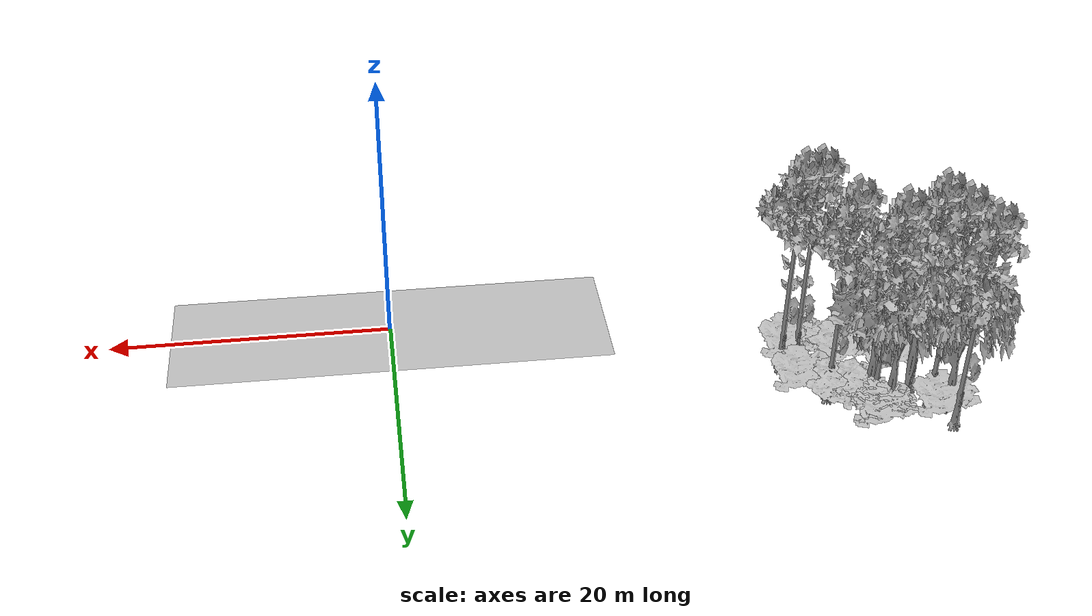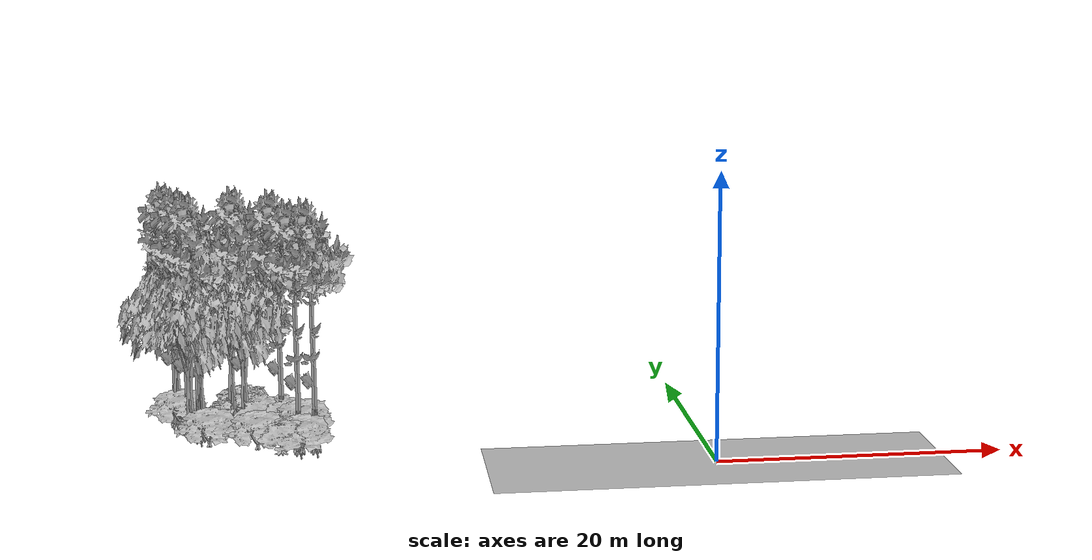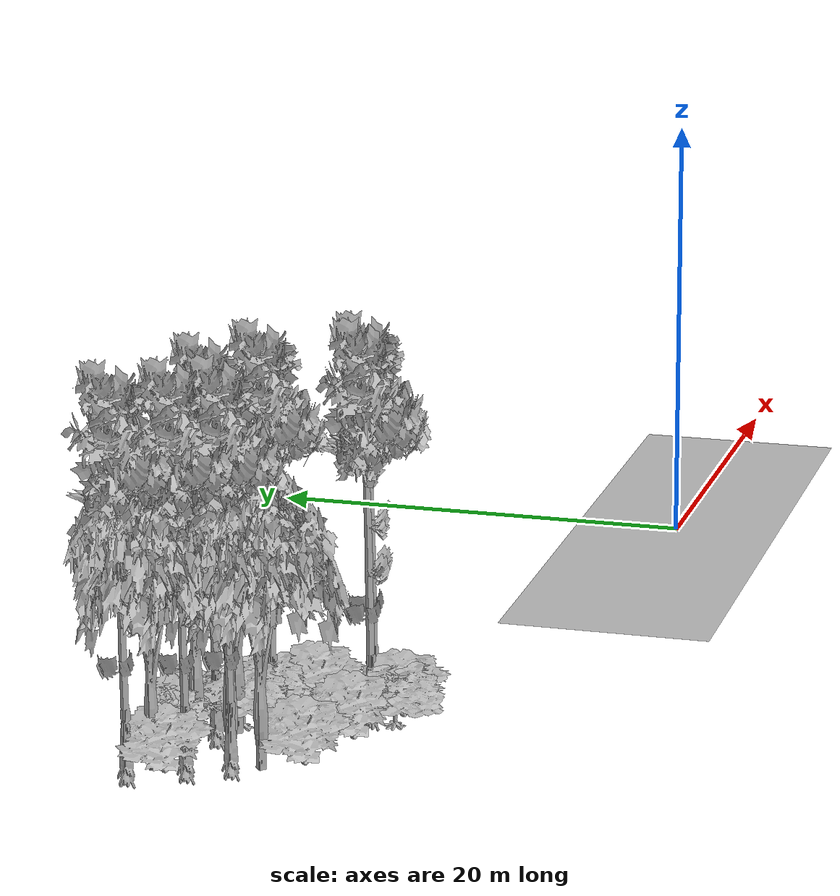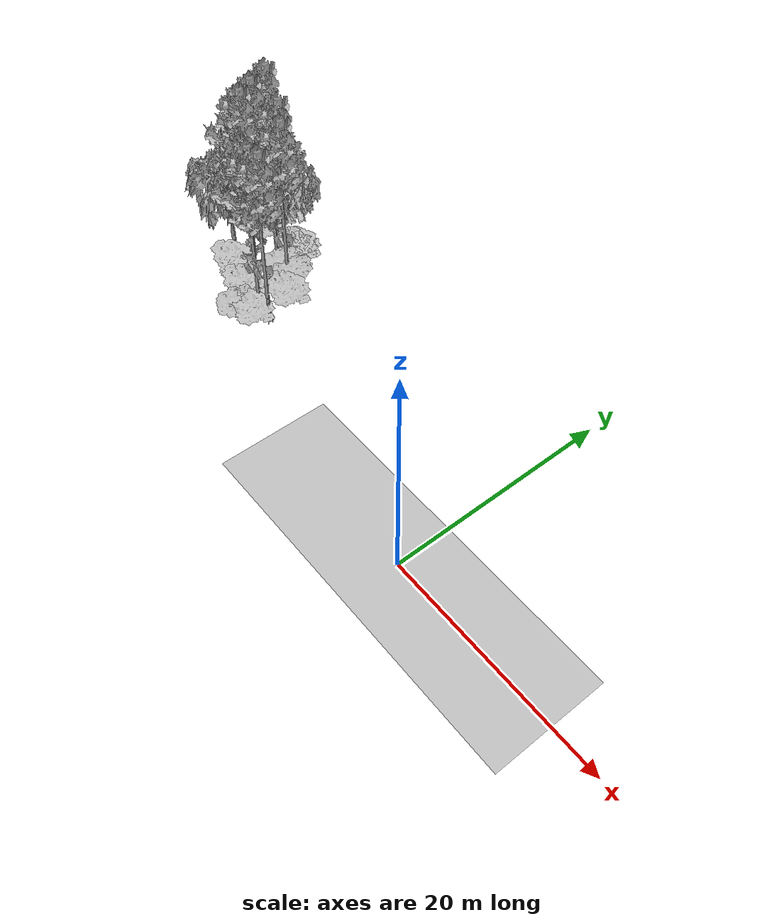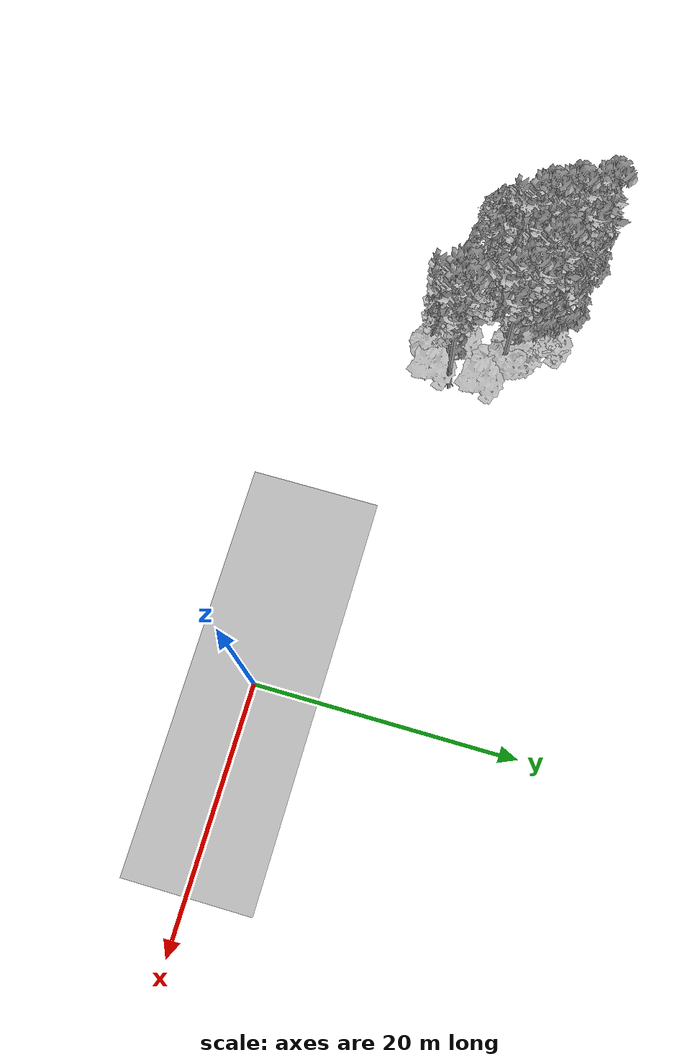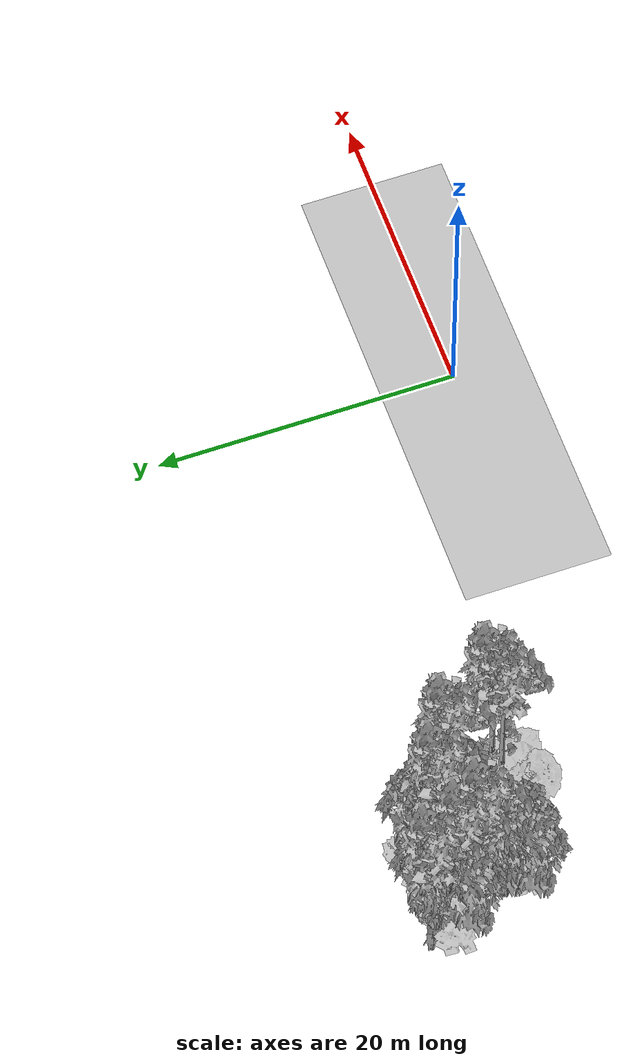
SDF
<sdf version="1.7">
 <world name="default">
  <model name="ground_plane">
   <static>1</static>
   <link name="link">
    <collision name="collision">
     <pose>-50 0 0 0 -0 0</pose>
     <geometry><plane><normal>0 0 1</normal><size>100 100</size></plane></geometry>
     <surface><contact><ode><min_depth>0.01</min_depth><max_vel>0</max_vel></ode></contact></surface>
    </collision>
    <visual name="grass">
     <cast_shadows>0</cast_shadows>
     <geometry>
      <mesh>
       <scale>0.5814285714285714 0.18142857142857144 0.1</scale>
       <uri>file://grass_plane/meshes/grass_plane.dae</uri>
      </mesh>
     </geometry>
    </visual>
   </link>
  </model>
  <model name="Tree 10">
   <static>1</static>
   <pose>-36.72252852309552 13.407077684974691 0 1.57079 -0 0</pose>
   <link name="link">
    <collision name="collision">
     <geometry><mesh><scale>3 2 3</scale><uri>model://tree_3/meshes/tree_3.obj</uri></mesh></geometry>
    </collision>
    <visual name="visual">
     <geometry><mesh><scale>3 2 3</scale><uri>model://tree_3/meshes/tree_3.obj</uri></mesh></geometry>
    </visual>
   </link>
  </model>
  <model name="Tree 19">
   <static>1</static>
   <pose>-36.90230717961292 13.916196201880688 0 1.57079 -0 0</pose>
   <link name="link">
    <collision name="collision">
     <geometry><mesh><scale>3.5 5 3.5</scale><uri>model://tree_2/meshes/tree_2.obj</uri></mesh></geometry>
    </collision>
    <visual name="visual">
     <geometry><mesh><scale>3.5 5 3.5</scale><uri>model://tree_2/meshes/tree_2.obj</uri></mesh></geometry>
    </visual>
   </link>
  </model>
  <model name="Tree 67">
   <static>1</static>
   <pose>-32.2931211116159 13.700185355622121 0 1.57079 -0 0</pose>
   <link name="link">
    <collision name="collision">
     <geometry><mesh><scale>3 2 3</scale><uri>model://tree_3/meshes/tree_3.obj</uri></mesh></geometry>
    </collision>
    <visual name="visual">
     <geometry><mesh><scale>3 2 3</scale><uri>model://tree_3/meshes/tree_3.obj</uri></mesh></geometry>
    </visual>
   </link>
  </model>
  <model name="Tree 78">
   <static>1</static>
   <pose>-29.409249671771317 11.15461628394938 0 1.57079 -0 0</pose>
   <link name="link">
    <collision name="collision">
     <geometry><mesh><scale>3.5 5 3.5</scale><uri>model://tree_9/meshes/tree_9.obj</uri></mesh></geometry>
    </collision>
    <visual name="visual">
     <geometry><mesh><scale>3.5 5 3.5</scale><uri>model://tree_9/meshes/tree_9.obj</uri></mesh></geometry>
    </visual>
   </link>
  </model>
  <model name="Tree 102">
   <static>1</static>
   <pose>-28.18875982257997 7.178274187207801 0 1.57079 -0 0</pose>
   <link name="link">
    <collision name="collision">
     <geometry><mesh><scale>3.5 5 3.5</scale><uri>model://tree_9/meshes/tree_9.obj</uri></mesh></geometry>
    </collision>
    <visual name="visual">
     <geometry><mesh><scale>3.5 5 3.5</scale><uri>model://tree_9/meshes/tree_9.obj</uri></mesh></geometry>
    </visual>
   </link>
  </model>
  <model name="Tree 129">
   <static>1</static>
   <pose>-29.409409268300898 5.760476917625915 0 1.57079 -0 0</pose>
   <link name="link">
    <collision name="collision">
     <geometry><mesh><scale>4 2.5 4</scale><uri>model://tree_1/meshes/tree_1.obj</uri></mesh></geometry>
    </collision>
    <visual name="visual">
     <geometry><mesh><scale>4 2.5 4</scale><uri>model://tree_1/meshes/tree_1.obj</uri></mesh></geometry>
    </visual>
   </link>
  </model>
  <model name="Tree 201">
   <static>1</static>
   <pose>-31.054858728453603 7.046896896750166 0 1.57079 -0 0</pose>
   <link name="link">
    <collision name="collision">
     <geometry><mesh><scale>3 2 3</scale><uri>model://tree_3/meshes/tree_3.obj</uri></mesh></geometry>
    </collision>
    <visual name="visual">
     <geometry><mesh><scale>3 2 3</scale><uri>model://tree_3/meshes/tree_3.obj</uri></mesh></geometry>
    </visual>
   </link>
  </model>
  <model name="Tree 207">
   <static>1</static>
   <pose>-27.05451510245605 7.39091677508301 0 1.57079 -0 0</pose>
   <link name="link">
    <collision name="collision">
     <geometry><mesh><scale>3.5 5 3.5</scale><uri>model://tree_9/meshes/tree_9.obj</uri></mesh></geometry>
    </collision>
    <visual name="visual">
     <geometry><mesh><scale>3.5 5 3.5</scale><uri>model://tree_9/meshes/tree_9.obj</uri></mesh></geometry>
    </visual>
   </link>
  </model>
  <model name="Tree 217">
   <static>1</static>
   <pose>-27.975430353632866 5.760126110936511 0 1.57079 -0 0</pose>
   <link name="link">
    <collision name="collision">
     <geometry><mesh><scale>3 2 3</scale><uri>model://tree_3/meshes/tree_3.obj</uri></mesh></geometry>
    </collision>
    <visual name="visual">
     <geometry><mesh><scale>3 2 3</scale><uri>model://tree_3/meshes/tree_3.obj</uri></mesh></geometry>
    </visual>
   </link>
  </model>
  <model name="Tree 247">
   <static>1</static>
   <pose>-27.895539666698607 9.579811099908248 0 1.57079 -0 0</pose>
   <link name="link">
    <collision name="collision">
     <geometry><mesh><scale>3 2 3</scale><uri>model://tree_3/meshes/tree_3.obj</uri></mesh></geometry>
    </collision>
    <visual name="visual">
     <geometry><mesh><scale>3 2 3</scale><uri>model://tree_3/meshes/tree_3.obj</uri></mesh></geometry>
    </visual>
   </link>
  </model>
  <model name="Tree 262">
   <static>1</static>
   <pose>-33.00785488985469 13.336079853074175 0 1.57079 -0 0</pose>
   <link name="link">
    <collision name="collision">
     <geometry><mesh><scale>3.5 5 3.5</scale><uri>model://tree_2/meshes/tree_2.obj</uri></mesh></geometry>
    </collision>
    <visual name="visual">
     <geometry><mesh><scale>3.5 5 3.5</scale><uri>model://tree_2/meshes/tree_2.obj</uri></mesh></geometry>
    </visual>
   </link>
  </model>
  <model name="Tree 280">
   <static>1</static>
   <pose>-35.77631226535189 9.604264641210882 0 1.57079 -0 0</pose>
   <link name="link">
    <collision name="collision">
     <geometry><mesh><scale>3.5 5 3.5</scale><uri>model://tree_2/meshes/tree_2.obj</uri></mesh></geometry>
    </collision>
    <visual name="visual">
     <geometry><mesh><scale>3.5 5 3.5</scale><uri>model://tree_2/meshes/tree_2.obj</uri></mesh></geometry>
    </visual>
   </link>
  </model>
  <model name="Tree 298">
   <static>1</static>
   <pose>-32.07065079413241 12.781775955591456 0 1.57079 -0 0</pose>
   <link name="link">
    <collision name="collision">
     <geometry><mesh><scale>3.5 5 3.5</scale><uri>model://tree_9/meshes/tree_9.obj</uri></mesh></geometry>
    </collision>
    <visual name="visual">
     <geometry><mesh><scale>3.5 5 3.5</scale><uri>model://tree_9/meshes/tree_9.obj</uri></mesh></geometry>
    </visual>
   </link>
  </model>
  <model name="Tree 303">
   <static>1</static>
   <pose>-29.681218682416272 11.546037307487307 0 1.57079 -0 0</pose>
   <link name="link">
    <collision name="collision">
     <geometry><mesh><scale>4 2.5 4</scale><uri>model://tree_1/meshes/tree_1.obj</uri></mesh></geometry>
    </collision>
    <visual name="visual">
     <geometry><mesh><scale>4 2.5 4</scale><uri>model://tree_1/meshes/tree_1.obj</uri></mesh></geometry>
    </visual>
   </link>
  </model>
  <model name="Tree 313">
   <static>1</static>
   <pose>-31.22987261105364 11.886431160235688 0 1.57079 -0 0</pose>
   <link name="link">
    <collision name="collision">
     <geometry><mesh><scale>4 2.5 4</scale><uri>model://tree_1/meshes/tree_1.obj</uri></mesh></geometry>
    </collision>
    <visual name="visual">
     <geometry><mesh><scale>4 2.5 4</scale><uri>model://tree_1/meshes/tree_1.obj</uri></mesh></geometry>
    </visual>
   </link>
  </model>
  <model name="Tree 326">
   <static>1</static>
   <pose>-35.103596019952946 11.146379649859139 0 1.57079 -0 0</pose>
   <link name="link">
    <collision name="collision">
     <geometry><mesh><scale>3.5 5 3.5</scale><uri>model://tree_2/meshes/tree_2.obj</uri></mesh></geometry>
    </collision>
    <visual name="visual">
     <geometry><mesh><scale>3.5 5 3.5</scale><uri>model://tree_2/meshes/tree_2.obj</uri></mesh></geometry>
    </visual>
   </link>
  </model>
  <model name="Tree 339">
   <static>1</static>
   <pose>-37.08245660067368 14.969418336603653 0 1.57079 -0 0</pose>
   <link name="link">
    <collision name="collision">
     <geometry><mesh><scale>3.5 5 3.5</scale><uri>model://tree_9/meshes/tree_9.obj</uri></mesh></geometry>
    </collision>
    <visual name="visual">
     <geometry><mesh><scale>3.5 5 3.5</scale><uri>model://tree_9/meshes/tree_9.obj</uri></mesh></geometry>
    </visual>
   </link>
  </model>
  <model name="Tree 449">
   <static>1</static>
   <pose>-35.23076510782403 11.080705637851185 0 1.57079 -0 0</pose>
   <link name="link">
    <collision name="collision">
     <geometry><mesh><scale>3.5 5 3.5</scale><uri>model://tree_9/meshes/tree_9.obj</uri></mesh></geometry>
    </collision>
    <visual name="visual">
     <geometry><mesh><scale>3.5 5 3.5</scale><uri>model://tree_9/meshes/tree_9.obj</uri></mesh></geometry>
    </visual>
   </link>
  </model>
  <model name="Tree 463">
   <static>1</static>
   <pose>-36.08677247678802 12.735721736421183 0 1.57079 -0 0</pose>
   <link name="link">
    <collision name="collision">
     <geometry><mesh><scale>3.5 5 3.5</scale><uri>model://tree_9/meshes/tree_9.obj</uri></mesh></geometry>
    </collision>
    <visual name="visual">
     <geometry><mesh><scale>3.5 5 3.5</scale><uri>model://tree_9/meshes/tree_9.obj</uri></mesh></geometry>
    </visual>
   </link>
  </model>
  <model name="Tree 472">
   <static>1</static>
   <pose>-32.210091127110005 13.918222531625737 0 1.57079 -0 0</pose>
   <link name="link">
    <collision name="collision">
     <geometry><mesh><scale>3 2 3</scale><uri>model://tree_3/meshes/tree_3.obj</uri></mesh></geometry>
    </collision>
    <visual name="visual">
     <geometry><mesh><scale>3 2 3</scale><uri>model://tree_3/meshes/tree_3.obj</uri></mesh></geometry>
    </visual>
   </link>
  </model>
  <model name="Tree 496">
   <static>1</static>
   <pose>-34.419225687040736 8.138784845975092 0 1.57079 -0 0</pose>
   <link name="link">
    <collision name="collision">
     <geometry><mesh><scale>3 2 3</scale><uri>model://tree_3/meshes/tree_3.obj</uri></mesh></geometry>
    </collision>
    <visual name="visual">
     <geometry><mesh><scale>3 2 3</scale><uri>model://tree_3/meshes/tree_3.obj</uri></mesh></geometry>
    </visual>
   </link>
  </model>
  <model name="Tree 525">
   <static>1</static>
   <pose>-32.0578855362642 11.847755132956298 0 1.57079 -0 0</pose>
   <link name="link">
    <collision name="collision">
     <geometry><mesh><scale>3.5 5 3.5</scale><uri>model://tree_2/meshes/tree_2.obj</uri></mesh></geometry>
    </collision>
    <visual name="visual">
     <geometry><mesh><scale>3.5 5 3.5</scale><uri>model://tree_2/meshes/tree_2.obj</uri></mesh></geometry>
    </visual>
   </link>
  </model>
  <model name="Bush 4">
   <static>1</static>
   <pose>-29.499473601193277 9.292857075746632 0 1.57079 -0 0</pose>
   <link name="link">
    <collision name="collision">
     <geometry><mesh><scale>2 2 2</scale><uri>model://bush_3/meshes/bush_3.obj</uri></mesh></geometry>
     <surface><contact><collide_without_contact>false</collide_without_contact></contact></surface>
    </collision>
    <visual name="visual">
     <geometry><mesh><scale>2 2 2</scale><uri>model://bush_3/meshes/bush_3.obj</uri></mesh></geometry>
    </visual>
   </link>
  </model>
 </world>
</sdf>
